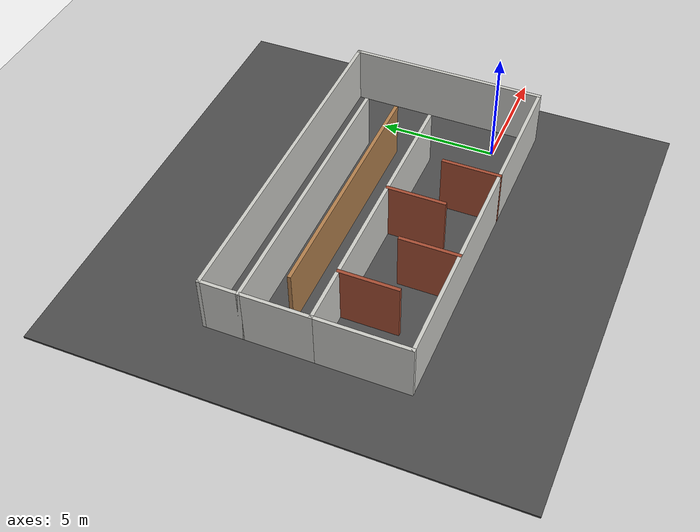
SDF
<sdf version="1.6">
 <world name="default">
  <light name="sun" type="directional">
   <pose>0 0 10 0 -0 0</pose>
   <diffuse>0.8 0.8 0.8 1</diffuse>
   <specular>0.2 0.2 0.2 1</specular>
   <attenuation>
    <range>1000</range>
    <constant>0.9</constant>
    <linear>0.01</linear>
    <quadratic>0.001</quadratic>
   </attenuation>
   <direction>-0.5 0.1 -0.9</direction>
  </light>
  <model name="ground_plane">
   <static>1</static>
   <link name="link">
    <collision name="collision">
     <geometry><plane><normal>0 0 1</normal><size>100 100</size></plane></geometry>
     <surface><friction><ode><mu>100</mu><mu2>50</mu2></ode></friction></surface>
    </collision>
    <visual name="visual">
     <cast_shadows>0</cast_shadows>
     <geometry><plane><normal>0 0 1</normal><size>100 100</size></plane></geometry>
     <material>
      <script><uri>file://media/materials/scripts/gazebo.material</uri><name>Gazebo/Grey</name></script>
     </material>
    </visual>
   </link>
  </model>
  <gravity>0 0 -9.8</gravity>
  <magnetic_field>6e-06 2.3e-05 -4.2e-05</magnetic_field>
  <atmosphere type="adiabatic"/>
  <physics name="default_physics" default="0" type="ode">
   <max_step_size>0.001</max_step_size>
   <real_time_factor>1</real_time_factor>
   <real_time_update_rate>1000</real_time_update_rate>
  </physics>
  <scene><ambient>0.4 0.4 0.4 1</ambient><background>0.7 0.7 0.7 1</background><shadows>1</shadows></scene>
  <audio><device>default</device></audio>
  <spherical_coordinates>
   <surface_model>EARTH_WGS84</surface_model>
   <latitude_deg>0</latitude_deg>
   <longitude_deg>0</longitude_deg>
   <elevation>0</elevation>
   <heading_deg>0</heading_deg>
  </spherical_coordinates>
  <model name="pre_test_env">
   <pose>-5.98352 2.71614 0.10222 0 -0 1.56717</pose>
   <link name="Wall_0">
    <collision name="Wall_0_Collision">
     <geometry><box><size>12 0.15 2.5</size></box></geometry>
     <pose>0 0 1.25 0 -0 0</pose>
    </collision>
    <visual name="Wall_0_Visual">
     <pose>0 0 1.25 0 -0 0</pose>
     <geometry><box><size>12 0.15 2.5</size></box></geometry>
     <material>
      <script><uri>file://media/materials/scripts/gazebo.material</uri><name>Gazebo/CeilingTiled</name></script>
      <ambient>1 1 1 1</ambient>
     </material>
     <meta><layer>0</layer></meta>
    </visual>
    <pose>-0.296005 1.5 0 0 -0 1.5708</pose>
   </link>
   <link name="Wall_1">
    <collision name="Wall_1_Collision">
     <geometry><box><size>3 0.15 2.5</size></box></geometry>
     <pose>0 0 1.25 0 -0 0</pose>
    </collision>
    <visual name="Wall_1_Visual">
     <pose>0 0 1.25 0 -0 0</pose>
     <geometry><box><size>3 0.15 2.5</size></box></geometry>
     <material>
      <script><uri>file://media/materials/scripts/gazebo.material</uri><name>Gazebo/CeilingTiled</name></script>
      <ambient>1 1 1 1</ambient>
     </material>
     <meta><layer>0</layer></meta>
    </visual>
    <pose>1.12899 7.425 0 0 -0 0</pose>
   </link>
   <link name="Wall_2">
    <collision name="Wall_2_Collision">
     <geometry><box><size>12 0.15 2.5</size></box></geometry>
     <pose>0 0 1.25 0 -0 0</pose>
    </collision>
    <visual name="Wall_2_Visual">
     <pose>0 0 1.25 0 -0 0</pose>
     <geometry><box><size>12 0.15 2.5</size></box></geometry>
     <material>
      <script><uri>file://media/materials/scripts/gazebo.material</uri><name>Gazebo/CeilingTiled</name></script>
      <ambient>1 1 1 1</ambient>
     </material>
     <meta><layer>0</layer></meta>
    </visual>
    <pose>2.554 1.5 0 0 -0 -1.5708</pose>
   </link>
   <link name="Wall_25">
    <collision name="Wall_25_Collision">
     <geometry><box><size>2.5 0.15 2.5</size></box></geometry>
     <pose>0 0 1.25 0 -0 0</pose>
    </collision>
    <visual name="Wall_25_Visual">
     <pose>0 0 1.25 0 -0 0</pose>
     <geometry><box><size>2.5 0.15 2.5</size></box></geometry>
     <material>
      <script><uri>file://media/materials/scripts/gazebo.material</uri><name>Gazebo/Bricks</name></script>
      <ambient>1 1 1 1</ambient>
     </material>
     <meta><layer>0</layer></meta>
    </visual>
    <pose>-2.979 -2.03028 0 0 -0 0</pose>
   </link>
   <link name="Wall_27">
    <collision name="Wall_27_Collision">
     <geometry><box><size>2.5 0.15 2.5</size></box></geometry>
     <pose>0 0 1.25 0 -0 0</pose>
    </collision>
    <visual name="Wall_27_Visual">
     <pose>0 0 1.25 0 -0 0</pose>
     <geometry><box><size>2.5 0.15 2.5</size></box></geometry>
     <material>
      <script><uri>file://media/materials/scripts/gazebo.material</uri><name>Gazebo/Bricks</name></script>
      <ambient>1 1 1 1</ambient>
     </material>
     <meta><layer>0</layer></meta>
    </visual>
    <pose>-1.49375 0.270867 0 0 -0 3.14159</pose>
   </link>
   <link name="Wall_29">
    <collision name="Wall_29_Collision">
     <geometry><box><size>2.5 0.15 2.5</size></box></geometry>
     <pose>0 0 1.25 0 -0 0</pose>
    </collision>
    <visual name="Wall_29_Visual">
     <pose>0 0 1.25 0 -0 0</pose>
     <geometry><box><size>2.5 0.15 2.5</size></box></geometry>
     <material>
      <script><uri>file://media/materials/scripts/gazebo.material</uri><name>Gazebo/Bricks</name></script>
      <ambient>1 1 1 1</ambient>
     </material>
     <meta><layer>0</layer></meta>
    </visual>
    <pose>-2.95255 2.65137 0 0 -0 0</pose>
   </link>
   <link name="Wall_31">
    <collision name="Wall_31_Collision">
     <geometry><box><size>2.5 0.15 2.5</size></box></geometry>
     <pose>0 0 1.25 0 -0 0</pose>
    </collision>
    <visual name="Wall_31_Visual">
     <pose>0 0 1.25 0 -0 0</pose>
     <geometry><box><size>2.5 0.15 2.5</size></box></geometry>
     <material>
      <script><uri>file://media/materials/scripts/gazebo.material</uri><name>Gazebo/Bricks</name></script>
      <ambient>1 1 1 1</ambient>
     </material>
     <meta><layer>0</layer></meta>
    </visual>
    <pose>-1.49375 5.05832 0 0 -0 3.14159</pose>
   </link>
   <link name="Wall_38">
    <collision name="Wall_38_Collision">
     <geometry><box><size>10.5 0.15 2.5</size></box></geometry>
     <pose>0 0 1.25 0 -0 0</pose>
    </collision>
    <visual name="Wall_38_Visual">
     <pose>0 0 1.25 0 -0 0</pose>
     <geometry><box><size>10.5 0.15 2.5</size></box></geometry>
     <material>
      <script><uri>file://media/materials/scripts/gazebo.material</uri><name>Gazebo/Wood</name></script>
      <ambient>1 1 1 1</ambient>
     </material>
     <meta><layer>0</layer></meta>
    </visual>
    <pose>1.21636 0.785494 0 0 -0 1.5708</pose>
   </link>
   <link name="Wall_4">
    <collision name="Wall_4_Collision">
     <geometry><box><size>4 0.15 2.5</size></box></geometry>
     <pose>0 0 1.25 0 -0 0</pose>
    </collision>
    <visual name="Wall_4_Visual">
     <pose>0 0 1.25 0 -0 0</pose>
     <geometry><box><size>4 0.15 2.5</size></box></geometry>
     <material>
      <script><uri>file://media/materials/scripts/gazebo.material</uri><name>Gazebo/CeilingTiled</name></script>
      <ambient>1 1 1 1</ambient>
     </material>
     <meta><layer>0</layer></meta>
    </visual>
    <pose>-2.221 7.425 0 0 -0 3.14159</pose>
   </link>
   <link name="Wall_40">
    <collision name="Wall_40_Collision">
     <geometry><box><size>8.45 0.15 2.5</size></box></geometry>
     <pose>0 0 1.25 0 -0 0</pose>
    </collision>
    <visual name="Wall_40_Visual">
     <pose>0 0 1.25 0 -0 0</pose>
     <geometry><box><size>8.45 0.15 2.5</size></box></geometry>
     <material>
      <script><uri>file://media/materials/scripts/gazebo.material</uri><name>Gazebo/CeilingTiled</name></script>
      <ambient>1 1 1 1</ambient>
     </material>
     <meta><layer>0</layer></meta>
    </visual>
    <pose>0.003995 -7.425 0 0 -0 0</pose>
   </link>
   <link name="Wall_5">
    <collision name="Wall_5_Collision">
     <geometry><box><size>15 0.15 2.5</size></box></geometry>
     <pose>0 0 1.25 0 -0 0</pose>
    </collision>
    <visual name="Wall_5_Visual">
     <pose>0 0 1.25 0 -0 0</pose>
     <geometry><box><size>15 0.15 2.5</size></box></geometry>
     <material>
      <script><uri>file://media/materials/scripts/gazebo.material</uri><name>Gazebo/CeilingTiled</name></script>
      <ambient>1 1 1 1</ambient>
     </material>
     <meta><layer>0</layer></meta>
    </visual>
    <pose>-4.146 -0 0 0 -0 -1.5708</pose>
   </link>
   <link name="Wall_7">
    <collision name="Wall_7_Collision">
     <geometry><box><size>1.75 0.15 2.5</size></box></geometry>
     <pose>0 0 1.25 0 -0 0</pose>
    </collision>
    <visual name="Wall_7_Visual">
     <pose>0 0 1.25 0 -0 0</pose>
     <geometry><box><size>1.75 0.15 2.5</size></box></geometry>
     <material>
      <script><uri>file://media/materials/scripts/gazebo.material</uri><name>Gazebo/CeilingTiled</name></script>
      <ambient>1 1 1 1</ambient>
     </material>
     <meta><layer>0</layer></meta>
    </visual>
    <pose>3.354 7.425 0 0 -0 0</pose>
   </link>
   <link name="Wall_9">
    <collision name="Wall_9_Collision">
     <geometry><box><size>15 0.15 2.5</size></box></geometry>
     <pose>0 0 1.25 0 -0 0</pose>
    </collision>
    <visual name="Wall_9_Visual">
     <pose>0 0 1.25 0 -0 0</pose>
     <geometry><box><size>15 0.15 2.5</size></box></geometry>
     <material>
      <script><uri>file://media/materials/scripts/gazebo.material</uri><name>Gazebo/CeilingTiled</name></script>
      <ambient>1 1 1 1</ambient>
     </material>
     <meta><layer>0</layer></meta>
    </visual>
    <pose>4.154 -0 0 0 -0 -1.5708</pose>
   </link>
   <static>1</static>
  </model>
  <model name="asphalt_plane">
   <static>1</static>
   <link name="link">
    <collision name="collision"><geometry><box><size>20 20 0.1</size></box></geometry></collision>
    <visual name="visual">
     <cast_shadows>0</cast_shadows>
     <geometry><box><size>20 20 0.1</size></box></geometry>
     <material>
      <script>
       <uri>model://asphalt_plane/materials/scripts</uri>
       <uri>model://asphalt_plane/materials/textures</uri>
       <name>vrc/asphalt</name>
      </script>
     </material>
    </visual>
   </link>
   <pose>-6.41485 2.94224 0 0 -0 0</pose>
  </model>
 </world>
</sdf>
